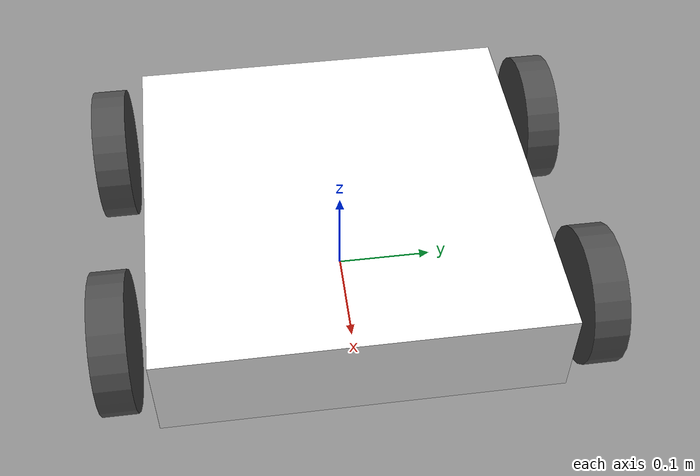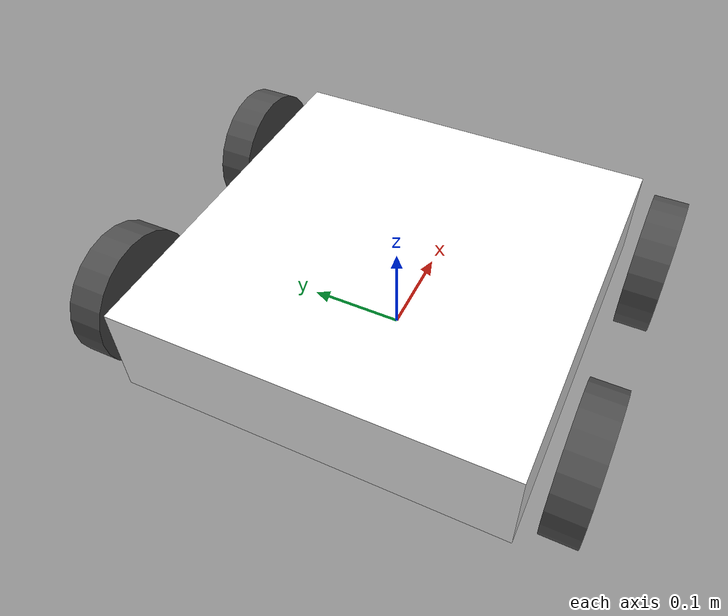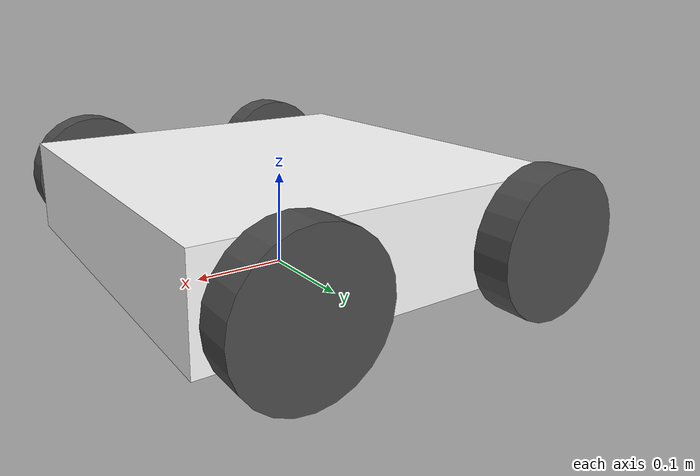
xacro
<?xml version="1.0"?>
<robot name="differential_wheeled_robot" xmlns:xacro="http://ros.org/wiki/xacro">
  <xacro:include filename="$(find robot_description_pkg)/urdf/wheel.urdf.xacro" />
<xacro:property name="M_PI" value="3.1415926535897931" />
<xacro:property name="M_PI_2" value="1.570796327" />
<xacro:property name="DEG_TO_RAD" value="0.017453293" />

<xacro:property name="base_length" value="0.4"/>
<xacro:property name="base_breadth" value="0.4"/>
<xacro:property name="base_height" value="0.1" />
<xacro:property name="wheel_radius" value="0.07"/>
<material name="White">
    <color rgba="1.0 1.0 1.0 1.0"/>
</material>
<link name="base_footprint">
    <inertial>
      <mass value="0.0001" />
      <origin xyz="0 0 0" />
      <inertia ixx="0.0001" ixy="0.0" ixz="0.0"
          iyy="0.0001" iyz="0.0"
          izz="0.0001" />
    </inertial>
    <visual>
        <origin xyz="0 0 0" rpy="0 0 0" />
        <geometry>
            <box size="0.001 0.001 0.001" />
        </geometry>
    </visual>
  </link>

  <gazebo reference="base_footprint">
    <turnGravityOff>false</turnGravityOff>
  </gazebo>
  <joint name="base_footprint_joint" type="fixed">
    <origin xyz="0 0 ${wheel_radius}" rpy="0 0 0" />
    <parent link="base_footprint"/>
    <child link="base_link" />
</joint>
<link name="base_link">
    <visual>
      <origin xyz="0 0 0" rpy="0 0 0" />
      <geometry>
          <box size="${base_length} ${base_breadth} ${base_height} " />
      </geometry>
      <material name="White" />
    </visual>
</link>
<wheel fb="front" lr="right" parent="base_link" translateX="0.13" translateY="-0.235" flipY="1"/>
<wheel fb="front" lr="left" parent="base_link" translateX="0.13" translateY="0.235" flipY="1"/>
<wheel fb="back" lr="right" parent="base_link" translateX="-0.13" translateY="-0.235" flipY="1"/>
<wheel fb="back" lr="left" parent="base_link" translateX="-0.13" translateY="0.235" flipY="1"/>
</robot>

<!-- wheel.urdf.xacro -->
<robot name="wheel" xmlns:xacro="http://www.ros.org/wiki/xacro">

  <!-- Wheels -->
  <xacro:property name="wheel_radius" value="0.07" />
  <xacro:property name="wheel_height" value="0.035" />
  <xacro:property name="wheel_mass" value="2.5" /> <!-- in kg-->

  <xacro:property name="base_x_origin_to_wheel_origin" value="0.33" />
  <xacro:property name="base_y_origin_to_wheel_origin" value="0.235" />
  <xacro:property name="base_z_origin_to_wheel_origin" value="0.0" />

  <xacro:macro name="cylinder_inertia" params="m r h">
    <inertia  ixx="${m*(3*r*r+h*h)/12}" ixy = "0" ixz = "0"
              iyy="${m*(3*r*r+h*h)/12}" iyz = "0"
              izz="${m*r*r/2}" />
  </xacro:macro>

  <xacro:macro name="wheel" params="fb lr parent translateX translateY flipY"> <!--fb : front, back ; lr: left, right -->
    <link name="${fb}_${lr}_wheel">
      <visual>
        <origin xyz="0 0 0" rpy="${flipY*M_PI/2} 0  0 " />
        <geometry>
          <cylinder length="${wheel_height}" radius="${wheel_radius}" />
        </geometry>
        <material name="DarkGray" />
      </visual>
      <collision>
        <origin xyz="0 0 0" rpy="${flipY*M_PI/2} 0 0 " />
        <geometry>
          <cylinder length="${wheel_height}" radius="${wheel_radius}" />
        </geometry>
      </collision>
      <inertial>
        <mass value="${wheel_mass}" />
        <origin xyz="0 0 0" />
        <cylinder_inertia  m="${wheel_mass}" r="${wheel_radius}" h="${wheel_height}" />
      </inertial>
    </link>

    <gazebo reference="${fb}_${lr}_wheel">
      <mu1 value="1.0"/>
      <mu2 value="1.0"/>
      <kp  value="10000000.0" />
      <kd  value="1.0" />
      <fdir1 value="1 0 0"/>
      <material>Gazebo/Grey</material>
      <turnGravityOff>false</turnGravityOff>
    </gazebo>

    <joint name="${fb}_${lr}_wheel_joint" type="continuous">
      <parent link="${parent}"/>
      <child link="${fb}_${lr}_wheel"/>
      <origin xyz="${translateX} ${translateY} ${base_z_origin_to_wheel_origin}" rpy="0 0 0" />
      <axis xyz="0 1 0" rpy="0  0" />
      <limit effort="100" velocity="100"/>
      <joint_properties damping="0.0" friction="0.0"/>
    </joint>

    <!-- Transmission is important to link the joints and the controller -->
    <transmission name="${fb}_${lr}_wheel_joint_trans">
      <type>transmission_interface/SimpleTransmission</type>
      <joint name="${fb}_${lr}_wheel_joint" />
      <actuator name="${fb}_${lr}_wheel_joint_motor">
        <hardwareInterface>EffortJointInterface</hardwareInterface>
        <mechanicalReduction>1</mechanicalReduction>
      </actuator>
    </transmission>

  </xacro:macro>
</robot>
